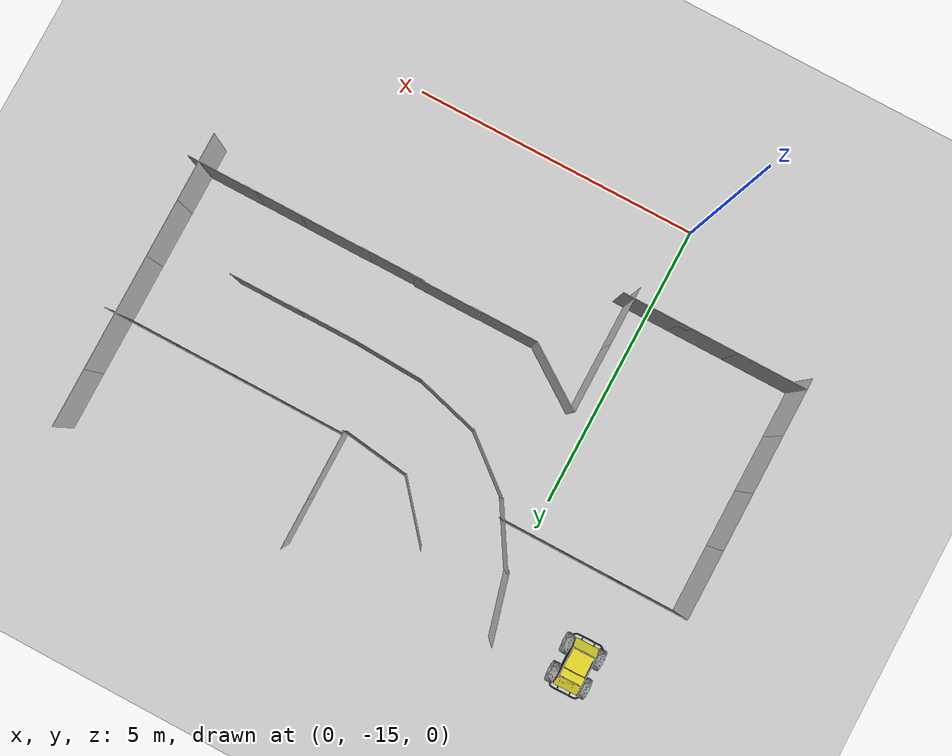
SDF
<sdf version="1.6">
 <world name="default">
  <model name="ground_plane">
   <static>1</static>
   <link name="link">
    <collision name="collision">
     <geometry><plane><normal>0 0 1</normal><size>100 100</size></plane></geometry>
     <surface>
      <contact><collide_bitmask>65535</collide_bitmask></contact>
      <friction><ode><mu>100</mu><mu2>50</mu2></ode></friction>
     </surface>
    </collision>
    <visual name="visual">
     <cast_shadows>0</cast_shadows>
     <geometry><plane><normal>0 0 1</normal><size>100 100</size></plane></geometry>
     <material>
      <script><uri>file://media/materials/scripts/gazebo.material</uri><name>Gazebo/Grey</name></script>
     </material>
    </visual>
   </link>
  </model>
  <model name="nist_maze_wall_120_clone_0_clone_8_clone_clone_5_clone_2">
   <static>1</static>
   <link name="nist_maze_wall_120_link">
    <collision name="collision">
     <geometry>
      <mesh><uri>model://nist_maze_wall_120/meshes/nist_maze_wall_120.dae</uri><scale>1 1 1</scale></mesh>
     </geometry>
    </collision>
    <visual name="visual">
     <geometry>
      <mesh><uri>model://nist_maze_wall_120/meshes/nist_maze_wall_120.dae</uri><scale>1 1 1</scale></mesh>
     </geometry>
    </visual>
   </link>
   <pose>8 -8 0 0 -0 1.5708</pose>
  </model>
  <model name="nist_maze_wall_120_clone_0_clone_8_clone_clone_5_clone_3">
   <static>1</static>
   <link name="nist_maze_wall_120_link">
    <collision name="collision">
     <geometry>
      <mesh><uri>model://nist_maze_wall_120/meshes/nist_maze_wall_120.dae</uri><scale>1 1 1</scale></mesh>
     </geometry>
    </collision>
    <visual name="visual">
     <geometry>
      <mesh><uri>model://nist_maze_wall_120/meshes/nist_maze_wall_120.dae</uri><scale>1 1 1</scale></mesh>
     </geometry>
    </visual>
   </link>
   <pose>8 -9 0 0 -0 1.5708</pose>
  </model>
  <model name="nist_maze_wall_120_clone_7_clone">
   <static>1</static>
   <link name="nist_maze_wall_120_link">
    <collision name="collision">
     <geometry>
      <mesh><uri>model://nist_maze_wall_120/meshes/nist_maze_wall_120.dae</uri><scale>1 1 1</scale></mesh>
     </geometry>
    </collision>
    <visual name="visual">
     <geometry>
      <mesh><uri>model://nist_maze_wall_120/meshes/nist_maze_wall_120.dae</uri><scale>1 1 1</scale></mesh>
     </geometry>
    </visual>
   </link>
   <pose>7 -10 0 0 -0 0</pose>
  </model>
  <model name="nist_maze_wall_120_clone_7_clone_0">
   <static>1</static>
   <link name="nist_maze_wall_120_link">
    <collision name="collision">
     <geometry>
      <mesh><uri>model://nist_maze_wall_120/meshes/nist_maze_wall_120.dae</uri><scale>1 1 1</scale></mesh>
     </geometry>
    </collision>
    <visual name="visual">
     <geometry>
      <mesh><uri>model://nist_maze_wall_120/meshes/nist_maze_wall_120.dae</uri><scale>1 1 1</scale></mesh>
     </geometry>
    </visual>
   </link>
   <pose>6 -10 0 0 -0 0</pose>
  </model>
  <model name="nist_maze_wall_120_clone_7_clone_1">
   <static>1</static>
   <link name="nist_maze_wall_120_link">
    <collision name="collision">
     <geometry>
      <mesh><uri>model://nist_maze_wall_120/meshes/nist_maze_wall_120.dae</uri><scale>1 1 1</scale></mesh>
     </geometry>
    </collision>
    <visual name="visual">
     <geometry>
      <mesh><uri>model://nist_maze_wall_120/meshes/nist_maze_wall_120.dae</uri><scale>1 1 1</scale></mesh>
     </geometry>
    </visual>
   </link>
   <pose>5 -10 0 0 -0 0</pose>
  </model>
  <model name="nist_maze_wall_120_clone_7_clone_2">
   <static>1</static>
   <link name="nist_maze_wall_120_link">
    <collision name="collision">
     <geometry>
      <mesh><uri>model://nist_maze_wall_120/meshes/nist_maze_wall_120.dae</uri><scale>1 1 1</scale></mesh>
     </geometry>
    </collision>
    <visual name="visual">
     <geometry>
      <mesh><uri>model://nist_maze_wall_120/meshes/nist_maze_wall_120.dae</uri><scale>1 1 1</scale></mesh>
     </geometry>
    </visual>
   </link>
   <pose>4 -10 0 0 -0 0</pose>
  </model>
  <model name="nist_maze_wall_120_clone_0_clone_8_clone_clone_5_clone_6_clone">
   <static>1</static>
   <link name="nist_maze_wall_120_link">
    <collision name="collision">
     <geometry>
      <mesh><uri>model://nist_maze_wall_120/meshes/nist_maze_wall_120.dae</uri><scale>1 1 1</scale></mesh>
     </geometry>
    </collision>
    <visual name="visual">
     <geometry>
      <mesh><uri>model://nist_maze_wall_120/meshes/nist_maze_wall_120.dae</uri><scale>1 1 1</scale></mesh>
     </geometry>
    </visual>
   </link>
   <pose>4 -8.85445 0 0 -0 1.5708</pose>
  </model>
  <model name="nist_maze_wall_120_clone_0_clone_8_clone_clone_5_clone_6_clone_0">
   <static>1</static>
   <link name="nist_maze_wall_120_link">
    <collision name="collision">
     <geometry>
      <mesh><uri>model://nist_maze_wall_120/meshes/nist_maze_wall_120.dae</uri><scale>1 1 1</scale></mesh>
     </geometry>
    </collision>
    <visual name="visual">
     <geometry>
      <mesh><uri>model://nist_maze_wall_120/meshes/nist_maze_wall_120.dae</uri><scale>1 1 1</scale></mesh>
     </geometry>
    </visual>
   </link>
   <pose>4 -8 0 0 -0 1.5708</pose>
  </model>
  <model name="nist_maze_wall_120_clone_0_clone_8_clone_clone_5_clone_6_clone_3_clone_1">
   <static>1</static>
   <link name="nist_maze_wall_120_link">
    <collision name="collision">
     <geometry>
      <mesh><uri>model://nist_maze_wall_120/meshes/nist_maze_wall_120.dae</uri><scale>1 1 1</scale></mesh>
     </geometry>
    </collision>
    <visual name="visual">
     <geometry>
      <mesh><uri>model://nist_maze_wall_120/meshes/nist_maze_wall_120.dae</uri><scale>1 1 1</scale></mesh>
     </geometry>
    </visual>
   </link>
   <pose>2.33228 -8.47007 0 0 -0 2.26876</pose>
  </model>
  <model name="nist_maze_wall_120_clone_0_clone_8_clone_clone_5_clone_6_clone_3_clone_2">
   <static>1</static>
   <link name="nist_maze_wall_120_link">
    <collision name="collision">
     <geometry>
      <mesh><uri>model://nist_maze_wall_120/meshes/nist_maze_wall_120.dae</uri><scale>1 1 1</scale></mesh>
     </geometry>
    </collision>
    <visual name="visual">
     <geometry>
      <mesh><uri>model://nist_maze_wall_120/meshes/nist_maze_wall_120.dae</uri><scale>1 1 1</scale></mesh>
     </geometry>
    </visual>
   </link>
   <pose>2.92579 -8.78641 0 0 -0 3.00495</pose>
  </model>
  <model name="nist_maze_wall_120_clone_0_clone_8_clone_clone_5_clone_6_clone_3_clone_3">
   <static>1</static>
   <link name="nist_maze_wall_120_link">
    <collision name="collision">
     <geometry>
      <mesh><uri>model://nist_maze_wall_120/meshes/nist_maze_wall_120.dae</uri><scale>1 1 1</scale></mesh>
     </geometry>
    </collision>
    <visual name="visual">
     <geometry>
      <mesh><uri>model://nist_maze_wall_120/meshes/nist_maze_wall_120.dae</uri><scale>1 1 1</scale></mesh>
     </geometry>
    </visual>
   </link>
   <pose>0.569683 -8.03484 0 0 -0 1.8295</pose>
  </model>
  <model name="nist_maze_wall_120_clone_0_clone_8_clone_clone_5_clone_6_clone_3_clone_4">
   <static>1</static>
   <link name="nist_maze_wall_120_link">
    <collision name="collision">
     <geometry>
      <mesh><uri>model://nist_maze_wall_120/meshes/nist_maze_wall_120.dae</uri><scale>1 1 1</scale></mesh>
     </geometry>
    </collision>
    <visual name="visual">
     <geometry>
      <mesh><uri>model://nist_maze_wall_120/meshes/nist_maze_wall_120.dae</uri><scale>1 1 1</scale></mesh>
     </geometry>
    </visual>
   </link>
   <pose>-2 -10 0 0 -0 1.5708</pose>
  </model>
  <model name="nist_maze_wall_120_clone_0_clone_8_clone_clone_5_clone_6_clone_3_clone_5">
   <static>1</static>
   <link name="nist_maze_wall_120_link">
    <collision name="collision">
     <geometry>
      <mesh><uri>model://nist_maze_wall_120/meshes/nist_maze_wall_120.dae</uri><scale>1 1 1</scale></mesh>
     </geometry>
    </collision>
    <visual name="visual">
     <geometry>
      <mesh><uri>model://nist_maze_wall_120/meshes/nist_maze_wall_120.dae</uri><scale>1 1 1</scale></mesh>
     </geometry>
    </visual>
   </link>
   <pose>1.57844 -9.60506 0 0 -0 2.4552</pose>
  </model>
  <model name="nist_maze_wall_120_clone_7_clone_2_clone">
   <static>1</static>
   <link name="nist_maze_wall_120_link">
    <collision name="collision">
     <geometry>
      <mesh><uri>model://nist_maze_wall_120/meshes/nist_maze_wall_120.dae</uri><scale>1 1 1</scale></mesh>
     </geometry>
    </collision>
    <visual name="visual">
     <geometry>
      <mesh><uri>model://nist_maze_wall_120/meshes/nist_maze_wall_120.dae</uri><scale>1 1 1</scale></mesh>
     </geometry>
    </visual>
   </link>
   <pose>4.48548 -11.3853 0 0 -0 0</pose>
  </model>
  <model name="nist_maze_wall_120_clone_0_clone_8_clone_clone_5_clone_6_clone_3_clone_2_clone">
   <static>1</static>
   <link name="nist_maze_wall_120_link">
    <collision name="collision">
     <geometry>
      <mesh><uri>model://nist_maze_wall_120/meshes/nist_maze_wall_120.dae</uri><scale>1 1 1</scale></mesh>
     </geometry>
    </collision>
    <visual name="visual">
     <geometry>
      <mesh><uri>model://nist_maze_wall_120/meshes/nist_maze_wall_120.dae</uri><scale>1 1 1</scale></mesh>
     </geometry>
    </visual>
   </link>
   <pose>2.34612 -9.99977 0 0 -0 2.87086</pose>
  </model>
  <model name="nist_maze_wall_120_clone_0_clone_8_clone_clone_5_clone_6_clone_3_clone_1_clone">
   <static>1</static>
   <link name="nist_maze_wall_120_link">
    <collision name="collision">
     <geometry>
      <mesh><uri>model://nist_maze_wall_120/meshes/nist_maze_wall_120.dae</uri><scale>1 1 1</scale></mesh>
     </geometry>
    </collision>
    <visual name="visual">
     <geometry>
      <mesh><uri>model://nist_maze_wall_120/meshes/nist_maze_wall_120.dae</uri><scale>1 1 1</scale></mesh>
     </geometry>
    </visual>
   </link>
   <pose>0.957633 -8.89644 0 0 -0 2.1196</pose>
  </model>
  <model name="nist_maze_wall_120_clone_0_clone_8_clone_clone_5_clone_6_clone_3_clone_5_clone">
   <static>1</static>
   <link name="nist_maze_wall_120_link">
    <collision name="collision">
     <geometry>
      <mesh><uri>model://nist_maze_wall_120/meshes/nist_maze_wall_120.dae</uri><scale>1 1 1</scale></mesh>
     </geometry>
    </collision>
    <visual name="visual">
     <geometry>
      <mesh><uri>model://nist_maze_wall_120/meshes/nist_maze_wall_120.dae</uri><scale>1 1 1</scale></mesh>
     </geometry>
    </visual>
   </link>
   <pose>3.36215 -10.1581 0 0 -0 3.09679</pose>
  </model>
  <model name="nist_maze_wall_120_clone_7_clone_0_clone">
   <static>1</static>
   <link name="nist_maze_wall_120_link">
    <collision name="collision">
     <geometry>
      <mesh><uri>model://nist_maze_wall_120/meshes/nist_maze_wall_120.dae</uri><scale>1 1 1</scale></mesh>
     </geometry>
    </collision>
    <visual name="visual">
     <geometry>
      <mesh><uri>model://nist_maze_wall_120/meshes/nist_maze_wall_120.dae</uri><scale>1 1 1</scale></mesh>
     </geometry>
    </visual>
   </link>
   <pose>0 -10 0 0 -0 0</pose>
  </model>
  <model name="nist_maze_wall_120_clone_7_clone_0_clone_clone">
   <static>1</static>
   <link name="nist_maze_wall_120_link">
    <collision name="collision">
     <geometry>
      <mesh><uri>model://nist_maze_wall_120/meshes/nist_maze_wall_120.dae</uri><scale>1 1 1</scale></mesh>
     </geometry>
    </collision>
    <visual name="visual">
     <geometry>
      <mesh><uri>model://nist_maze_wall_120/meshes/nist_maze_wall_120.dae</uri><scale>1 1 1</scale></mesh>
     </geometry>
    </visual>
   </link>
   <pose>-1 -10 0 0 -0 0</pose>
  </model>
  <model name="nist_maze_wall_120_clone_0_clone_8_clone_clone_5_clone_6_clone_3_clone_4_clone">
   <static>1</static>
   <link name="nist_maze_wall_120_link">
    <collision name="collision">
     <geometry>
      <mesh><uri>model://nist_maze_wall_120/meshes/nist_maze_wall_120.dae</uri><scale>1 1 1</scale></mesh>
     </geometry>
    </collision>
    <visual name="visual">
     <geometry>
      <mesh><uri>model://nist_maze_wall_120/meshes/nist_maze_wall_120.dae</uri><scale>1 1 1</scale></mesh>
     </geometry>
    </visual>
   </link>
   <pose>-2 -11 0 0 -0 1.5708</pose>
  </model>
  <model name="nist_maze_wall_120_clone_0_clone_8_clone_clone_5_clone_6_clone_3_clone_4_clone_0">
   <static>1</static>
   <link name="nist_maze_wall_120_link">
    <collision name="collision">
     <geometry>
      <mesh><uri>model://nist_maze_wall_120/meshes/nist_maze_wall_120.dae</uri><scale>1 1 1</scale></mesh>
     </geometry>
    </collision>
    <visual name="visual">
     <geometry>
      <mesh><uri>model://nist_maze_wall_120/meshes/nist_maze_wall_120.dae</uri><scale>1 1 1</scale></mesh>
     </geometry>
    </visual>
   </link>
   <pose>-2 -12 0 0 -0 1.5708</pose>
  </model>
  <model name="nist_maze_wall_120_clone_0_clone_8_clone_clone_5_clone_6_clone_3_clone_4_clone_1">
   <static>1</static>
   <link name="nist_maze_wall_120_link">
    <collision name="collision">
     <geometry>
      <mesh><uri>model://nist_maze_wall_120/meshes/nist_maze_wall_120.dae</uri><scale>1 1 1</scale></mesh>
     </geometry>
    </collision>
    <visual name="visual">
     <geometry>
      <mesh><uri>model://nist_maze_wall_120/meshes/nist_maze_wall_120.dae</uri><scale>1 1 1</scale></mesh>
     </geometry>
    </visual>
   </link>
   <pose>-2 -13 0 0 -0 1.5708</pose>
  </model>
  <model name="nist_maze_wall_120_clone_0_clone_8_clone_clone_5_clone_6_clone_3_clone_4_clone_2">
   <static>1</static>
   <link name="nist_maze_wall_120_link">
    <collision name="collision">
     <geometry>
      <mesh><uri>model://nist_maze_wall_120/meshes/nist_maze_wall_120.dae</uri><scale>1 1 1</scale></mesh>
     </geometry>
    </collision>
    <visual name="visual">
     <geometry>
      <mesh><uri>model://nist_maze_wall_120/meshes/nist_maze_wall_120.dae</uri><scale>1 1 1</scale></mesh>
     </geometry>
    </visual>
   </link>
   <pose>1 -12 0 0 -0 1.5708</pose>
  </model>
  <model name="nist_maze_wall_120_clone_0_clone_8_clone_clone_5_clone_6_clone_3_clone_4_clone_3">
   <static>1</static>
   <link name="nist_maze_wall_120_link">
    <collision name="collision">
     <geometry>
      <mesh><uri>model://nist_maze_wall_120/meshes/nist_maze_wall_120.dae</uri><scale>1 1 1</scale></mesh>
     </geometry>
    </collision>
    <visual name="visual">
     <geometry>
      <mesh><uri>model://nist_maze_wall_120/meshes/nist_maze_wall_120.dae</uri><scale>1 1 1</scale></mesh>
     </geometry>
    </visual>
   </link>
   <pose>1 -13 0 0 -0 1.5708</pose>
  </model>
  <model name="nist_maze_wall_120_clone_0_clone_8_clone_clone_5_clone_6_clone_3_clone_4_clone_5">
   <static>1</static>
   <link name="nist_maze_wall_120_link">
    <collision name="collision">
     <geometry>
      <mesh><uri>model://nist_maze_wall_120/meshes/nist_maze_wall_120.dae</uri><scale>1 1 1</scale></mesh>
     </geometry>
    </collision>
    <visual name="visual">
     <geometry>
      <mesh><uri>model://nist_maze_wall_120/meshes/nist_maze_wall_120.dae</uri><scale>1 1 1</scale></mesh>
     </geometry>
    </visual>
   </link>
   <pose>8 -10 0 0 -0 1.5708</pose>
  </model>
  <model name="nist_maze_wall_120_clone_0_clone_8_clone_clone_5_clone_6_clone_3_clone_4_clone_6">
   <static>1</static>
   <link name="nist_maze_wall_120_link">
    <collision name="collision">
     <geometry>
      <mesh><uri>model://nist_maze_wall_120/meshes/nist_maze_wall_120.dae</uri><scale>1 1 1</scale></mesh>
     </geometry>
    </collision>
    <visual name="visual">
     <geometry>
      <mesh><uri>model://nist_maze_wall_120/meshes/nist_maze_wall_120.dae</uri><scale>1 1 1</scale></mesh>
     </geometry>
    </visual>
   </link>
   <pose>8 -11 0 0 -0 1.5708</pose>
  </model>
  <model name="nist_maze_wall_120_clone_0_clone_8_clone_clone_5_clone_6_clone_3_clone_4_clone_7">
   <static>1</static>
   <link name="nist_maze_wall_120_link">
    <collision name="collision">
     <geometry>
      <mesh><uri>model://nist_maze_wall_120/meshes/nist_maze_wall_120.dae</uri><scale>1 1 1</scale></mesh>
     </geometry>
    </collision>
    <visual name="visual">
     <geometry>
      <mesh><uri>model://nist_maze_wall_120/meshes/nist_maze_wall_120.dae</uri><scale>1 1 1</scale></mesh>
     </geometry>
    </visual>
   </link>
   <pose>8 -12 0 0 -0 1.5708</pose>
  </model>
  <model name="nist_maze_wall_120_clone_7_clone_0_clone_clone_0">
   <static>1</static>
   <link name="nist_maze_wall_120_link">
    <collision name="collision">
     <geometry>
      <mesh><uri>model://nist_maze_wall_120/meshes/nist_maze_wall_120.dae</uri><scale>1 1 1</scale></mesh>
     </geometry>
    </collision>
    <visual name="visual">
     <geometry>
      <mesh><uri>model://nist_maze_wall_120/meshes/nist_maze_wall_120.dae</uri><scale>1 1 1</scale></mesh>
     </geometry>
    </visual>
   </link>
   <pose>-1 -14 0 0 -0 0</pose>
  </model>
  <model name="nist_maze_wall_120_clone_7_clone_0_clone_clone_1">
   <static>1</static>
   <link name="nist_maze_wall_120_link">
    <collision name="collision">
     <geometry>
      <mesh><uri>model://nist_maze_wall_120/meshes/nist_maze_wall_120.dae</uri><scale>1 1 1</scale></mesh>
     </geometry>
    </collision>
    <visual name="visual">
     <geometry>
      <mesh><uri>model://nist_maze_wall_120/meshes/nist_maze_wall_120.dae</uri><scale>1 1 1</scale></mesh>
     </geometry>
    </visual>
   </link>
   <pose>0 -14 0 0 -0 0</pose>
  </model>
  <model name="nist_maze_wall_120_clone_7_clone_0_clone_clone_2">
   <static>1</static>
   <link name="nist_maze_wall_120_link">
    <collision name="collision">
     <geometry>
      <mesh><uri>model://nist_maze_wall_120/meshes/nist_maze_wall_120.dae</uri><scale>1 1 1</scale></mesh>
     </geometry>
    </collision>
    <visual name="visual">
     <geometry>
      <mesh><uri>model://nist_maze_wall_120/meshes/nist_maze_wall_120.dae</uri><scale>1 1 1</scale></mesh>
     </geometry>
    </visual>
   </link>
   <pose>-2 -14 0 0 -0 0</pose>
  </model>
  <model name="nist_maze_wall_120_clone_7_clone_0_clone_clone_2_clone">
   <static>1</static>
   <link name="nist_maze_wall_120_link">
    <collision name="collision">
     <geometry>
      <mesh><uri>model://nist_maze_wall_120/meshes/nist_maze_wall_120.dae</uri><scale>1 1 1</scale></mesh>
     </geometry>
    </collision>
    <visual name="visual">
     <geometry>
      <mesh><uri>model://nist_maze_wall_120/meshes/nist_maze_wall_120.dae</uri><scale>1 1 1</scale></mesh>
     </geometry>
    </visual>
   </link>
   <pose>-2 -10 0 0 -0 0</pose>
  </model>
  <model name="nist_maze_wall_120_clone_7_clone_2_clone_0">
   <static>1</static>
   <link name="nist_maze_wall_120_link">
    <collision name="collision">
     <geometry>
      <mesh><uri>model://nist_maze_wall_120/meshes/nist_maze_wall_120.dae</uri><scale>1 1 1</scale></mesh>
     </geometry>
    </collision>
    <visual name="visual">
     <geometry>
      <mesh><uri>model://nist_maze_wall_120/meshes/nist_maze_wall_120.dae</uri><scale>1 1 1</scale></mesh>
     </geometry>
    </visual>
   </link>
   <pose>5 -12.6986 0 0 -0 0</pose>
  </model>
  <model name="nist_maze_wall_120_clone_7_clone_2_clone_1">
   <static>1</static>
   <link name="nist_maze_wall_120_link">
    <collision name="collision">
     <geometry>
      <mesh><uri>model://nist_maze_wall_120/meshes/nist_maze_wall_120.dae</uri><scale>1 1 1</scale></mesh>
     </geometry>
    </collision>
    <visual name="visual">
     <geometry>
      <mesh><uri>model://nist_maze_wall_120/meshes/nist_maze_wall_120.dae</uri><scale>1 1 1</scale></mesh>
     </geometry>
    </visual>
   </link>
   <pose>3 -12.6875 0 0 -0 0</pose>
  </model>
  <model name="nist_maze_wall_120_clone_7_clone_2_clone_2">
   <static>1</static>
   <link name="nist_maze_wall_120_link">
    <collision name="collision">
     <geometry>
      <mesh><uri>model://nist_maze_wall_120/meshes/nist_maze_wall_120.dae</uri><scale>1 1 1</scale></mesh>
     </geometry>
    </collision>
    <visual name="visual">
     <geometry>
      <mesh><uri>model://nist_maze_wall_120/meshes/nist_maze_wall_120.dae</uri><scale>1 1 1</scale></mesh>
     </geometry>
    </visual>
   </link>
   <pose>2 -12.6941 0 0 -0 0</pose>
  </model>
  <model name="nist_maze_wall_120_clone_7_clone_2_clone_3">
   <static>1</static>
   <link name="nist_maze_wall_120_link">
    <collision name="collision">
     <geometry>
      <mesh><uri>model://nist_maze_wall_120/meshes/nist_maze_wall_120.dae</uri><scale>1 1 1</scale></mesh>
     </geometry>
    </collision>
    <visual name="visual">
     <geometry>
      <mesh><uri>model://nist_maze_wall_120/meshes/nist_maze_wall_120.dae</uri><scale>1 1 1</scale></mesh>
     </geometry>
    </visual>
   </link>
   <pose>4 -12.7037 0 0 -0 0</pose>
  </model>
  <model name="nist_maze_wall_120_clone_7_clone_2_clone_4">
   <static>1</static>
   <link name="nist_maze_wall_120_link">
    <collision name="collision">
     <geometry>
      <mesh><uri>model://nist_maze_wall_120/meshes/nist_maze_wall_120.dae</uri><scale>1 1 1</scale></mesh>
     </geometry>
    </collision>
    <visual name="visual">
     <geometry>
      <mesh><uri>model://nist_maze_wall_120/meshes/nist_maze_wall_120.dae</uri><scale>1 1 1</scale></mesh>
     </geometry>
    </visual>
   </link>
   <pose>6 -12.701 0 0 -0 0</pose>
  </model>
  <model name="nist_maze_wall_120_clone_7_clone_2_clone_5">
   <static>1</static>
   <link name="nist_maze_wall_120_link">
    <collision name="collision">
     <geometry>
      <mesh><uri>model://nist_maze_wall_120/meshes/nist_maze_wall_120.dae</uri><scale>1 1 1</scale></mesh>
     </geometry>
    </collision>
    <visual name="visual">
     <geometry>
      <mesh><uri>model://nist_maze_wall_120/meshes/nist_maze_wall_120.dae</uri><scale>1 1 1</scale></mesh>
     </geometry>
    </visual>
   </link>
   <pose>7 -12.6961 0 0 -0 0</pose>
  </model>
  <model name="nist_maze_wall_120_clone_0_clone_8_clone_clone_5_clone_6_clone_3_clone_5_clone_0">
   <static>1</static>
   <link name="nist_maze_wall_120_link">
    <collision name="collision">
     <geometry>
      <mesh><uri>model://nist_maze_wall_120/meshes/nist_maze_wall_120.dae</uri><scale>1 1 1</scale></mesh>
     </geometry>
    </collision>
    <visual name="visual">
     <geometry>
      <mesh><uri>model://nist_maze_wall_120/meshes/nist_maze_wall_120.dae</uri><scale>1 1 1</scale></mesh>
     </geometry>
    </visual>
   </link>
   <pose>1.2445 -11.2448 0 0 -0 2.5358</pose>
  </model>
  <model name="nist_maze_wall_120_clone_7_clone_2_clone_5_clone">
   <static>1</static>
   <link name="nist_maze_wall_120_link">
    <collision name="collision">
     <geometry>
      <mesh><uri>model://nist_maze_wall_120/meshes/nist_maze_wall_120.dae</uri><scale>1 1 1</scale></mesh>
     </geometry>
    </collision>
    <visual name="visual">
     <geometry>
      <mesh><uri>model://nist_maze_wall_120/meshes/nist_maze_wall_120.dae</uri><scale>1 1 1</scale></mesh>
     </geometry>
    </visual>
   </link>
   <pose>5.52896 -11.3782 0 0 -0 0</pose>
  </model>
  <model name="husky_static">
   <link name="base_link">
    <inertial>
     <mass>33.855</mass>
     <pose>-0.085613 -0.00084 0.238145 0 -0 0</pose>
     <inertia>
      <ixx>2.2343</ixx>
      <ixy>-0.023642</ixy>
      <ixz>0.275174</ixz>
      <iyy>3.42518</iyy>
      <iyz>0.00239624</iyz>
      <izz>2.1241</izz>
     </inertia>
    </inertial>
    <visual name="base">
     <geometry><mesh><uri>model://husky/meshes/base_link.stl</uri></mesh></geometry>
     <material><script><name>Gazebo/FlatBlack</name><uri>__default__</uri></script></material>
    </visual>
    <visual name="top_plate">
     <geometry><mesh><uri>model://husky/meshes/top_plate.stl</uri></mesh></geometry>
     <material><script><name>Gazebo/Yellow</name><uri>__default__</uri></script></material>
    </visual>
    <visual name="front_bumper">
     <pose>0.47 0 0.091 0 -0 0</pose>
     <geometry><mesh><uri>model://husky/meshes/bumper.stl</uri></mesh></geometry>
     <material><script><name>Gazebo/FlatBlack</name><uri>__default__</uri></script></material>
    </visual>
    <visual name="rear_bumper">
     <pose>-0.47 0 0.091 0 -0 3.141</pose>
     <geometry><mesh><uri>model://husky/meshes/bumper.stl</uri></mesh></geometry>
     <material><script><name>Gazebo/FlatBlack</name><uri>__default__</uri></script></material>
    </visual>
    <visual name="user_rail">
     <pose>0.272 0 0.245 0 -0 0</pose>
     <geometry><mesh><uri>model://husky/meshes/user_rail.stl</uri></mesh></geometry>
     <material><script><name>Gazebo/Grey</name><uri>__default__</uri></script></material>
    </visual>
    <collision name="collision">
     <pose>0 0 0.1 0 -0 0</pose>
     <geometry><box><size>1.0074 0.5709 0.2675</size></box></geometry>
     <surface>
      <friction>
       <ode><mu>1</mu><mu2>1</mu2><fdir1>0 0 0</fdir1><slip1>0</slip1><slip2>0</slip2></ode>
       <torsional>
        <coefficient>1</coefficient>
        <patch_radius>0</patch_radius>
        <surface_radius>0</surface_radius>
        <use_patch_radius>1</use_patch_radius>
        <ode><slip>0</slip></ode>
       </torsional>
      </friction>
      <bounce><restitution_coefficient>0</restitution_coefficient><threshold>1e+06</threshold></bounce>
      <contact>
       <collide_without_contact>0</collide_without_contact>
       <collide_without_contact_bitmask>1</collide_without_contact_bitmask>
       <collide_bitmask>1</collide_bitmask>
       <ode>
        <soft_cfm>0</soft_cfm>
        <soft_erp>0.2</soft_erp>
        <kp>1e+13</kp>
        <kd>1</kd>
        <max_vel>0.01</max_vel>
        <min_depth>0</min_depth>
       </ode>
       <bullet>
        <split_impulse>1</split_impulse>
        <split_impulse_penetration_threshold>-0.01</split_impulse_penetration_threshold>
        <soft_cfm>0</soft_cfm>
        <soft_erp>0.2</soft_erp>
        <kp>1e+13</kp>
        <kd>1</kd>
       </bullet>
      </contact>
     </surface>
    </collision>
   </link>
   <link name="back_left_wheel">
    <pose>-0.256 0.285475 0.035 0 -0 0</pose>
    <inertial>
     <mass>2.6357</mass>
     <inertia>
      <ixx>0.0246688</ixx>
      <ixy>0</ixy>
      <ixz>0</ixz>
      <iyy>0.0246688</iyy>
      <iyz>0</iyz>
      <izz>0.0441058</izz>
     </inertia>
    </inertial>
    <visual name="back_left_wheel">
     <pose>0 0 0 -3.14159 0 0</pose>
     <geometry><mesh><uri>model://husky/meshes/wheel.stl</uri></mesh></geometry>
     <material><script><name>Gazebo/Grey</name><uri>__default__</uri></script></material>
    </visual>
    <collision name="back_left_wheel_collision">
     <pose>0 0 0 -1.5707 0 0</pose>
     <geometry><cylinder><radius>0.17775</radius><length>0.1143</length></cylinder></geometry>
     <surface>
      <friction>
       <ode><mu>100000</mu><mu2>100000</mu2><fdir1>0 0 0</fdir1><slip1>0</slip1><slip2>0</slip2></ode>
       <torsional>
        <coefficient>1</coefficient>
        <patch_radius>0</patch_radius>
        <surface_radius>0</surface_radius>
        <use_patch_radius>1</use_patch_radius>
        <ode><slip>0</slip></ode>
       </torsional>
      </friction>
      <bounce><restitution_coefficient>0</restitution_coefficient><threshold>1e+06</threshold></bounce>
      <contact>
       <collide_without_contact>0</collide_without_contact>
       <collide_without_contact_bitmask>1</collide_without_contact_bitmask>
       <collide_bitmask>1</collide_bitmask>
       <ode>
        <soft_cfm>0</soft_cfm>
        <soft_erp>0.2</soft_erp>
        <kp>1e+13</kp>
        <kd>1</kd>
        <max_vel>0.01</max_vel>
        <min_depth>0</min_depth>
       </ode>
       <bullet>
        <split_impulse>1</split_impulse>
        <split_impulse_penetration_threshold>-0.01</split_impulse_penetration_threshold>
        <soft_cfm>0</soft_cfm>
        <soft_erp>0.2</soft_erp>
        <kp>1e+13</kp>
        <kd>1</kd>
       </bullet>
      </contact>
     </surface>
    </collision>
   </link>
   <link name="back_right_wheel">
    <pose>-0.256 -0.285475 0.035 0 -0 0</pose>
    <inertial>
     <mass>2.6357</mass>
     <inertia>
      <ixx>0.0246688</ixx>
      <ixy>0</ixy>
      <ixz>0</ixz>
      <iyy>0.0246688</iyy>
      <iyz>0</iyz>
      <izz>0.0441058</izz>
     </inertia>
    </inertial>
    <visual name="back_right_wheel">
     <pose>0 0 0 -3.14159 0 0</pose>
     <geometry><mesh><uri>model://husky/meshes/wheel.stl</uri></mesh></geometry>
     <material><script><name>Gazebo/Grey</name><uri>__default__</uri></script></material>
    </visual>
    <collision name="back_right_wheel_collision">
     <pose>0 0 0 -1.5707 0 0</pose>
     <geometry><cylinder><radius>0.17775</radius><length>0.1143</length></cylinder></geometry>
     <surface>
      <friction>
       <ode><mu>100000</mu><mu2>100000</mu2><fdir1>0 0 0</fdir1><slip1>0</slip1><slip2>0</slip2></ode>
       <torsional>
        <coefficient>1</coefficient>
        <patch_radius>0</patch_radius>
        <surface_radius>0</surface_radius>
        <use_patch_radius>1</use_patch_radius>
        <ode><slip>0</slip></ode>
       </torsional>
      </friction>
      <bounce><restitution_coefficient>0</restitution_coefficient><threshold>1e+06</threshold></bounce>
      <contact>
       <collide_without_contact>0</collide_without_contact>
       <collide_without_contact_bitmask>1</collide_without_contact_bitmask>
       <collide_bitmask>1</collide_bitmask>
       <ode>
        <soft_cfm>0</soft_cfm>
        <soft_erp>0.2</soft_erp>
        <kp>1e+13</kp>
        <kd>1</kd>
        <max_vel>0.01</max_vel>
        <min_depth>0</min_depth>
       </ode>
       <bullet>
        <split_impulse>1</split_impulse>
        <split_impulse_penetration_threshold>-0.01</split_impulse_penetration_threshold>
        <soft_cfm>0</soft_cfm>
        <soft_erp>0.2</soft_erp>
        <kp>1e+13</kp>
        <kd>1</kd>
       </bullet>
      </contact>
     </surface>
    </collision>
   </link>
   <link name="front_left_wheel">
    <pose>0.256 0.285475 0.035 0 -0 0</pose>
    <inertial>
     <mass>2.6357</mass>
     <inertia>
      <ixx>0.0246688</ixx>
      <ixy>0</ixy>
      <ixz>0</ixz>
      <iyy>0.0246688</iyy>
      <iyz>0</iyz>
      <izz>0.0441058</izz>
     </inertia>
    </inertial>
    <visual name="front_left_wheel">
     <pose>0 0 0 -3.14159 0 0</pose>
     <geometry><mesh><uri>model://husky/meshes/wheel.stl</uri></mesh></geometry>
     <material><script><name>Gazebo/Grey</name><uri>__default__</uri></script></material>
    </visual>
    <collision name="front_left_wheel_collision">
     <pose>0 0 0 -1.5707 0 0</pose>
     <geometry><cylinder><radius>0.17775</radius><length>0.1143</length></cylinder></geometry>
     <surface>
      <friction>
       <ode><mu>100000</mu><mu2>100000</mu2><fdir1>0 0 0</fdir1><slip1>0</slip1><slip2>0</slip2></ode>
       <torsional>
        <coefficient>1</coefficient>
        <patch_radius>0</patch_radius>
        <surface_radius>0</surface_radius>
        <use_patch_radius>1</use_patch_radius>
        <ode><slip>0</slip></ode>
       </torsional>
      </friction>
      <bounce><restitution_coefficient>0</restitution_coefficient><threshold>1e+06</threshold></bounce>
      <contact>
       <collide_without_contact>0</collide_without_contact>
       <collide_without_contact_bitmask>1</collide_without_contact_bitmask>
       <collide_bitmask>1</collide_bitmask>
       <ode>
        <soft_cfm>0</soft_cfm>
        <soft_erp>0.2</soft_erp>
        <kp>1e+13</kp>
        <kd>1</kd>
        <max_vel>0.01</max_vel>
        <min_depth>0</min_depth>
       </ode>
       <bullet>
        <split_impulse>1</split_impulse>
        <split_impulse_penetration_threshold>-0.01</split_impulse_penetration_threshold>
        <soft_cfm>0</soft_cfm>
        <soft_erp>0.2</soft_erp>
        <kp>1e+13</kp>
        <kd>1</kd>
       </bullet>
      </contact>
     </surface>
    </collision>
   </link>
   <link name="front_right_wheel">
    <pose>0.256 -0.285475 0.035 0 -0 0</pose>
    <inertial>
     <mass>2.6357</mass>
     <inertia>
      <ixx>0.0246688</ixx>
      <ixy>0</ixy>
      <ixz>0</ixz>
      <iyy>0.0246688</iyy>
      <iyz>0</iyz>
      <izz>0.0441058</izz>
     </inertia>
    </inertial>
    <visual name="front_right_wheel">
     <pose>0 0 0 -3.14159 0 0</pose>
     <geometry><mesh><uri>model://husky/meshes/wheel.stl</uri></mesh></geometry>
     <material><script><name>Gazebo/Grey</name><uri>__default__</uri></script></material>
    </visual>
    <collision name="front_right_wheel_collision">
     <pose>0 0 0 -1.5707 0 0</pose>
     <geometry><cylinder><radius>0.17775</radius><length>0.1143</length></cylinder></geometry>
     <surface>
      <friction>
       <ode><mu>100000</mu><mu2>100000</mu2><fdir1>0 0 0</fdir1><slip1>0</slip1><slip2>0</slip2></ode>
       <torsional>
        <coefficient>1</coefficient>
        <patch_radius>0</patch_radius>
        <surface_radius>0</surface_radius>
        <use_patch_radius>1</use_patch_radius>
        <ode><slip>0</slip></ode>
       </torsional>
      </friction>
      <bounce><restitution_coefficient>0</restitution_coefficient><threshold>1e+06</threshold></bounce>
      <contact>
       <collide_without_contact>0</collide_without_contact>
       <collide_without_contact_bitmask>1</collide_without_contact_bitmask>
       <collide_bitmask>1</collide_bitmask>
       <ode>
        <soft_cfm>0</soft_cfm>
        <soft_erp>0.2</soft_erp>
        <kp>1e+13</kp>
        <kd>1</kd>
        <max_vel>0.01</max_vel>
        <min_depth>0</min_depth>
       </ode>
       <bullet>
        <split_impulse>1</split_impulse>
        <split_impulse_penetration_threshold>-0.01</split_impulse_penetration_threshold>
        <soft_cfm>0</soft_cfm>
        <soft_erp>0.2</soft_erp>
        <kp>1e+13</kp>
        <kd>1</kd>
       </bullet>
      </contact>
     </surface>
    </collision>
   </link>
   <joint name="back_left_joint" type="revolute">
    <parent>base_link</parent>
    <child>back_left_wheel</child>
    <axis>
     <xyz>0 1 0</xyz>
     <use_parent_model_frame>1</use_parent_model_frame>
     <limit><lower>-1e+16</lower><upper>1e+16</upper><effort>-1</effort><velocity>-1</velocity></limit>
     <dynamics>
      <spring_reference>0</spring_reference>
      <spring_stiffness>0</spring_stiffness>
      <damping>0</damping>
      <friction>0</friction>
     </dynamics>
    </axis>
    <physics>
     <ode><limit><cfm>0</cfm><erp>0.9</erp></limit><suspension><cfm>0</cfm><erp>0.2</erp></suspension></ode>
    </physics>
   </joint>
   <joint name="back_right_joint" type="revolute">
    <parent>base_link</parent>
    <child>back_right_wheel</child>
    <axis>
     <xyz>0 1 0</xyz>
     <use_parent_model_frame>1</use_parent_model_frame>
     <limit><lower>-1e+16</lower><upper>1e+16</upper><effort>-1</effort><velocity>-1</velocity></limit>
     <dynamics>
      <spring_reference>0</spring_reference>
      <spring_stiffness>0</spring_stiffness>
      <damping>0</damping>
      <friction>0</friction>
     </dynamics>
    </axis>
    <physics>
     <ode><limit><cfm>0</cfm><erp>0.9</erp></limit><suspension><cfm>0</cfm><erp>0.2</erp></suspension></ode>
    </physics>
   </joint>
   <joint name="front_left_joint" type="revolute">
    <parent>base_link</parent>
    <child>front_left_wheel</child>
    <axis>
     <xyz>0 1 0</xyz>
     <use_parent_model_frame>1</use_parent_model_frame>
     <limit><lower>-1e+16</lower><upper>1e+16</upper><effort>-1</effort><velocity>-1</velocity></limit>
     <dynamics>
      <spring_reference>0</spring_reference>
      <spring_stiffness>0</spring_stiffness>
      <damping>0</damping>
      <friction>0</friction>
     </dynamics>
    </axis>
    <physics>
     <ode><limit><cfm>0</cfm><erp>0.9</erp></limit><suspension><cfm>0</cfm><erp>0.2</erp></suspension></ode>
    </physics>
   </joint>
   <joint name="front_right_joint" type="revolute">
    <parent>base_link</parent>
    <child>front_right_wheel</child>
    <axis>
     <xyz>0 1 0</xyz>
     <use_parent_model_frame>1</use_parent_model_frame>
     <limit><lower>-1e+16</lower><upper>1e+16</upper><effort>-1</effort><velocity>-1</velocity></limit>
     <dynamics>
      <spring_reference>0</spring_reference>
      <spring_stiffness>0</spring_stiffness>
      <damping>0</damping>
      <friction>0</friction>
     </dynamics>
    </axis>
    <physics>
     <ode><limit><cfm>0</cfm><erp>0.9</erp></limit><suspension><cfm>0</cfm><erp>0.2</erp></suspension></ode>
    </physics>
   </joint>
   <static>1</static>
   <plugin name="husky_diff_controller" filename="libhusky_gazebo_plugins.so">
    <alwaysOn>1</alwaysOn>
    <updateRate>100.0</updateRate>
    <backLeftJoint>back_left_joint</backLeftJoint>
    <backRightJoint>back_right_joint</backRightJoint>
    <frontLeftJoint>front_left_joint</frontLeftJoint>
    <frontRightJoint>front_right_joint</frontRightJoint>
    <wheelSeparation>0.5709</wheelSeparation>
    <wheelDiameter>0.3555</wheelDiameter>
    <torque>35</torque>
   </plugin>
   <pose>-1.59264 -7.89162 0.142752 7e-06 -1e-06 -1.55891</pose>
  </model>
 </world>
</sdf>
